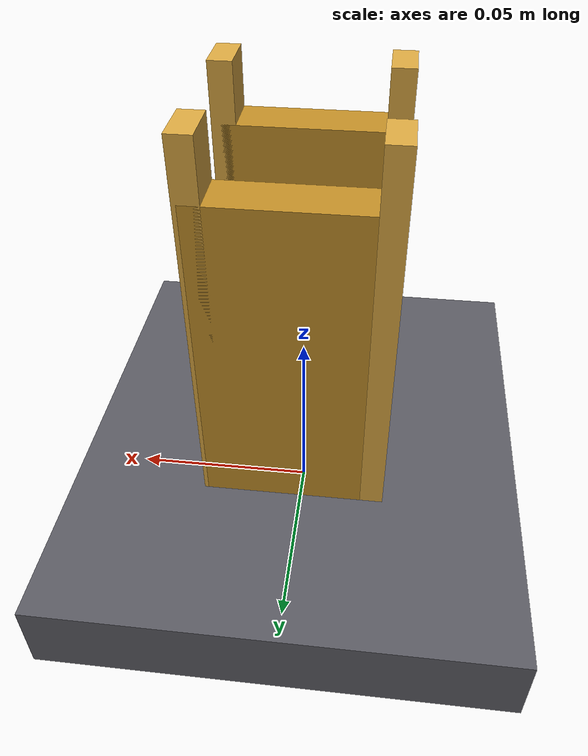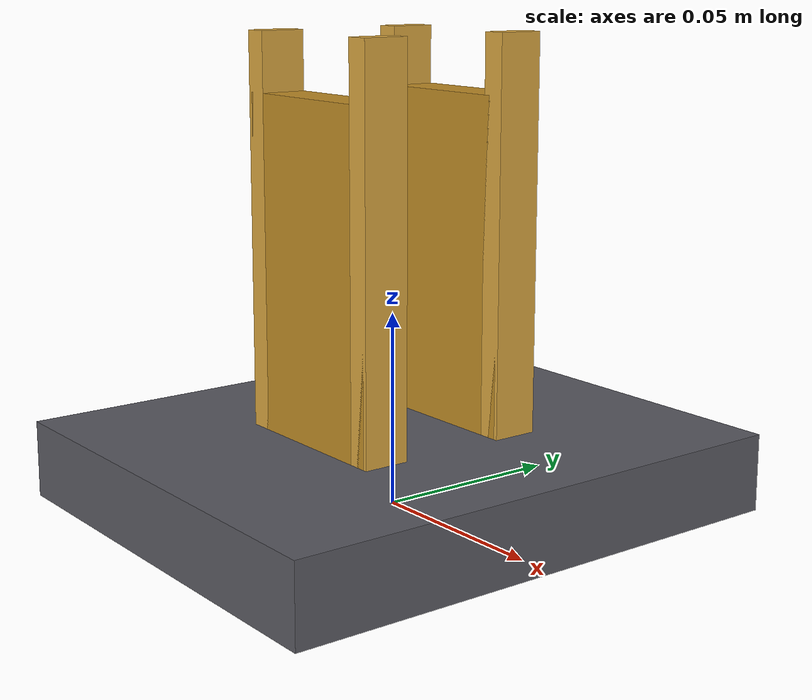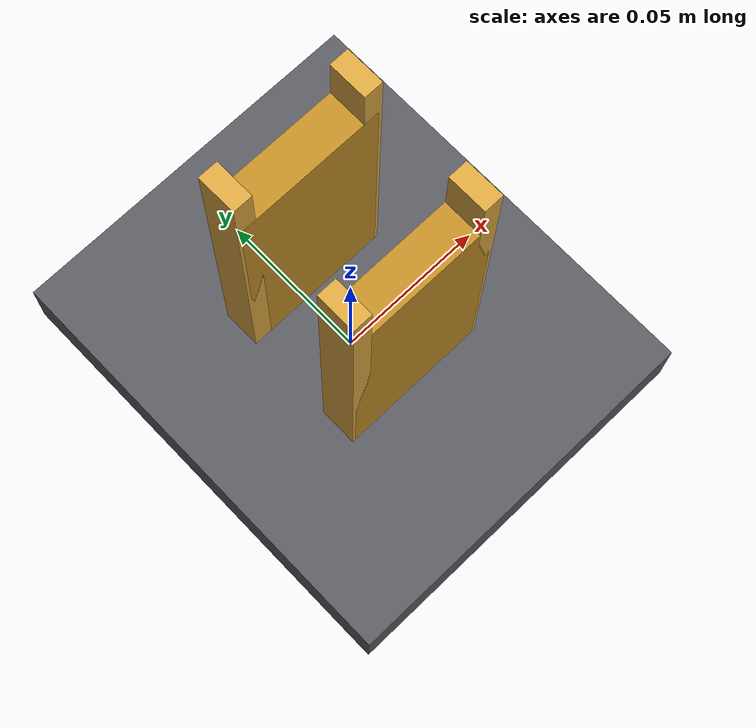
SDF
<?xml version="1.0"?>
<sdf version="1.7">
  <model name="regrasp_fixture">
    <static>true</static>

    <link name="fixture">
      <!-- 底板 -->
      <collision name="base_collision">
        <pose>0 0 0.01 0 0 0</pose>
        <geometry><box><size>0.12 0.14 0.02</size></box></geometry>
        <surface><friction><ode><mu>3.0</mu><mu2>3.0</mu2></ode></friction></surface>
      </collision>
      <visual name="base_visual">
        <pose>0 0 0.01 0 0 0</pose>
        <geometry><box><size>0.12 0.14 0.02</size></box></geometry>
        <material><ambient>0.35 0.35 0.38 1</ambient><diffuse>0.35 0.35 0.38 1</diffuse></material>
      </visual>

      <!-- 支撑台 ×2（顶面 z=0.105 = 杆的支撑面，杆心 0.120） -->
      <collision name="pedestal_m">
        <pose>0 -0.020 0.0625 0 0 0</pose>
        <geometry><box><size>0.046 0.012 0.085</size></box></geometry>
        <surface><friction><ode><mu>3.0</mu><mu2>3.0</mu2></ode></friction></surface>
      </collision>
      <collision name="pedestal_p">
        <pose>0 0.020 0.0625 0 0 0</pose>
        <geometry><box><size>0.046 0.012 0.085</size></box></geometry>
        <surface><friction><ode><mu>3.0</mu><mu2>3.0</mu2></ode></friction></surface>
      </collision>
      <visual name="pedestal_m_v">
        <pose>0 -0.020 0.0625 0 0 0</pose>
        <geometry><box><size>0.046 0.012 0.085</size></box></geometry>
        <material><ambient>0.75 0.55 0.15 1</ambient><diffuse>0.75 0.55 0.15 1</diffuse></material>
      </visual>
      <visual name="pedestal_p_v">
        <pose>0 0.020 0.0625 0 0 0</pose>
        <geometry><box><size>0.046 0.012 0.085</size></box></geometry>
        <material><ambient>0.75 0.55 0.15 1</ambient><diffuse>0.75 0.55 0.15 1</diffuse></material>
      </visual>

      <!-- 侧挡边 ×4（内表面 x=±0.018，比杆宽 30mm 每侧留 3mm；顶 z=0.120 达杆心线） -->
      <collision name="lip_m_neg">
        <pose>-0.021 -0.020 0.070 0 0 0</pose>
        <geometry><box><size>0.006 0.012 0.100</size></box></geometry>
        <surface><friction><ode><mu>3.0</mu><mu2>3.0</mu2></ode></friction></surface>
      </collision>
      <collision name="lip_m_pos">
        <pose>0.021 -0.020 0.070 0 0 0</pose>
        <geometry><box><size>0.006 0.012 0.100</size></box></geometry>
        <surface><friction><ode><mu>3.0</mu><mu2>3.0</mu2></ode></friction></surface>
      </collision>
      <collision name="lip_p_neg">
        <pose>-0.021 0.020 0.070 0 0 0</pose>
        <geometry><box><size>0.006 0.012 0.100</size></box></geometry>
        <surface><friction><ode><mu>3.0</mu><mu2>3.0</mu2></ode></friction></surface>
      </collision>
      <collision name="lip_p_pos">
        <pose>0.021 0.020 0.070 0 0 0</pose>
        <geometry><box><size>0.006 0.012 0.100</size></box></geometry>
        <surface><friction><ode><mu>3.0</mu><mu2>3.0</mu2></ode></friction></surface>
      </collision>
      <visual name="lip_m_neg_v">
        <pose>-0.021 -0.020 0.070 0 0 0</pose>
        <geometry><box><size>0.006 0.012 0.100</size></box></geometry>
        <material><ambient>0.85 0.65 0.25 1</ambient><diffuse>0.85 0.65 0.25 1</diffuse></material>
      </visual>
      <visual name="lip_m_pos_v">
        <pose>0.021 -0.020 0.070 0 0 0</pose>
        <geometry><box><size>0.006 0.012 0.100</size></box></geometry>
        <material><ambient>0.85 0.65 0.25 1</ambient><diffuse>0.85 0.65 0.25 1</diffuse></material>
      </visual>
      <visual name="lip_p_neg_v">
        <pose>-0.021 0.020 0.070 0 0 0</pose>
        <geometry><box><size>0.006 0.012 0.100</size></box></geometry>
        <material><ambient>0.85 0.65 0.25 1</ambient><diffuse>0.85 0.65 0.25 1</diffuse></material>
      </visual>
      <visual name="lip_p_pos_v">
        <pose>0.021 0.020 0.070 0 0 0</pose>
        <geometry><box><size>0.006 0.012 0.100</size></box></geometry>
        <material><ambient>0.85 0.65 0.25 1</ambient><diffuse>0.85 0.65 0.25 1</diffuse></material>
      </visual>
    </link>
  </model>
</sdf>
